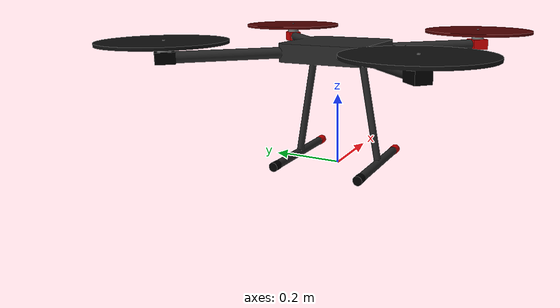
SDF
<sdf version='1.6'>
  <model name='griffin'>
    <link name='base_link'>
      <pose frame=''>0 0 0 0 0 0</pose>
      <inertial>
        <pose frame=''>0 0 0 0 0 0</pose>
        <mass>4.5</mass>
        <inertia>
          <ixx>0.23</ixx>
          <ixy>0</ixy>
          <ixz>0</ixz>
          <iyy>0.235</iyy>
          <iyz>0</iyz>
          <izz>0.328</izz>
        </inertia>
      </inertial>
      <collision name='base_link_inertia_collision'>
        <pose frame=''>0 0 0 0 0 1.570796</pose>
        <geometry>
          <mesh>
            <scale>1 1 1</scale>
            <uri>model://griffin/meshes/griffin.dae</uri>
          </mesh>
        </geometry>
        <surface>
          <contact>
            <ode>
              <min_depth>0.001</min_depth>
              <max_vel>0</max_vel>
            </ode>
          </contact>
          <friction>
            <ode/>
          </friction>
        </surface>
      </collision>
      <visual name='base_link_inertia_visual'>
        <pose frame=''>0 0 0 0 0 1.570796</pose>
        <geometry>
          <mesh>
            <scale>1 1 1</scale>
            <uri>model://griffin/meshes/griffin.dae</uri>
          </mesh>
        </geometry>
      </visual>
      <gravity>1</gravity>
      <velocity_decay/>
    </link>

    <static>0</static>

    <plugin name='mavlink_interface' filename='libgazebo_mavlink_interface.so'>
      <robotNamespace/>
      <imuSubTopic>/imu</imuSubTopic>
      <gpsSubTopic>/gps</gpsSubTopic>
      <magSubTopic>/mag</magSubTopic>
      <baroSubTopic>/baro</baroSubTopic>
      <motorCommandPubTopic>/command/motor</motorCommandPubTopic>

      <noise>true</noise>

      <mavlink_addr>INADDR_ANY</mavlink_addr>
      <mavlink_tcp_port>4560</mavlink_tcp_port>
      <enable_lockstep>true</enable_lockstep>
      <use_tcp>true</use_tcp>

      <hil_mode>false</hil_mode>
      <serialEnabled>false</serialEnabled>
      <hil_state_level>false</hil_state_level>
      <qgc_addr>INADDR_ANY</qgc_addr>
      <qgc_udp_port>14550</qgc_udp_port>
      <mavlink_udp_port>14560</mavlink_udp_port>
      <serialDevice>/dev/ttyACM0</serialDevice>
      <baudRate>921600</baudRate>

      <vehicle_is_tailsitter>false</vehicle_is_tailsitter>
      <send_vision_estimation>false</send_vision_estimation>
      <send_odometry>false</send_odometry>
    </plugin>

    <plugin name='actuators' filename='libgazebo_forces_moments_actuators_plugin.so'>
      <robotNamespace/>
      <linkName>base_link</linkName>
      <copterConfig>4x</copterConfig>
      <motorTimeConstant>0.07</motorTimeConstant>
      <armLength>0.49</armLength>
      <virtualYawMomentArm>0.0237</virtualYawMomentArm>

      <!-- Use maxMotorThrust for a linear motor model or motor_models for a complete 3rd order motor model -->

      <motor_models>
        <motor name='motor1'>
          <motor_index>0</motor_index>
          <coeffs>-0.0000000397959403 0.0001996456801152 -0.2773896905520106 118.7667175238575652</coeffs>
        </motor>
        <motor name='motor2'>
          <motor_index>1</motor_index>
          <coeffs>-0.0000000413595098 0.0002069219596305 -0.2858221900173662 121.2675504198610383</coeffs>
        </motor>
        <motor name='motor3'>
          <motor_index>2</motor_index>
          <coeffs>-0.0000000406769540 0.0002028435504012 -0.2787807080476987 117.7570545685150876</coeffs>
        </motor>
        <motor name='motor4'>
          <motor_index>3</motor_index>
          <coeffs>-0.0000000386173758 0.0001927613593388 -0.2630242287303664 109.8400430499503813</coeffs>
        </motor>
      </motor_models>
    </plugin>

    <plugin name="gps_plugin" filename="libgazebo_gps_plugin.so">
        <robotNamespace></robotNamespace>
        <gpsNoise>true</gpsNoise>
    </plugin>

    <plugin name='magnetometer_plugin' filename='libgazebo_magnetometer_plugin.so'>
      <robotNamespace/>
      <pubRate>20</pubRate>
      <noiseDensity>0.0004</noiseDensity>
      <randomWalk>6.4e-06</randomWalk>
      <biasCorrelationTime>600</biasCorrelationTime>
      <magTopic>/mag</magTopic>
      <magNoise>true</magNoise>
    </plugin>

    <plugin name='barometer_plugin' filename='libgazebo_barometer_plugin.so'>
      <robotNamespace/>
      <pubRate>10</pubRate>
      <baroTopic>/baro</baroTopic>
      <baroNoise>true</baroNoise>
    </plugin>

    <plugin name='gazebo_imu_plugin' filename='libgazebo_imu_plugin.so'>
      <robotNamespace/>
      <linkName>base_link</linkName>
      <imuTopic>/imu</imuTopic>
      <gyroscopeNoiseDensity>0.0003394</gyroscopeNoiseDensity>
      <gyroscopeRandomWalk>3.8785e-05</gyroscopeRandomWalk>
      <gyroscopeBiasCorrelationTime>1000.0</gyroscopeBiasCorrelationTime>
      <gyroscopeTurnOnBiasSigma>0.0087</gyroscopeTurnOnBiasSigma>
      <accelerometerNoiseDensity>0.004</accelerometerNoiseDensity>
      <accelerometerRandomWalk>0.006</accelerometerRandomWalk>
      <accelerometerBiasCorrelationTime>300.0</accelerometerBiasCorrelationTime>
      <accelerometerTurnOnBiasSigma>0.196</accelerometerTurnOnBiasSigma>
      <imuNoise>true</imuNoise>
    </plugin>
  </model>
</sdf>
